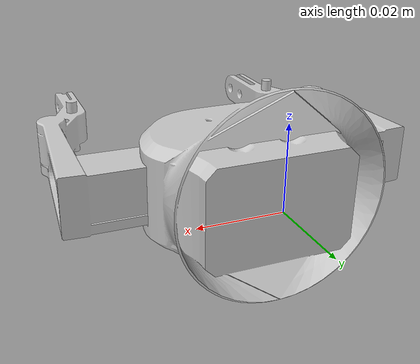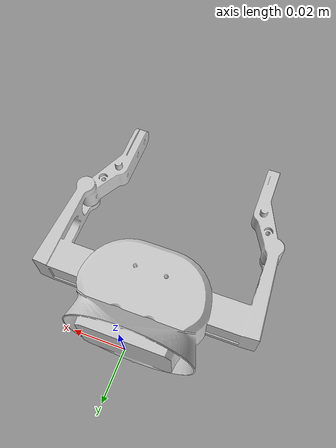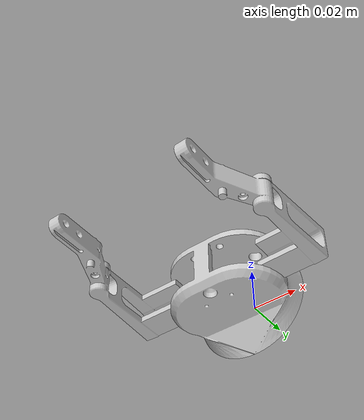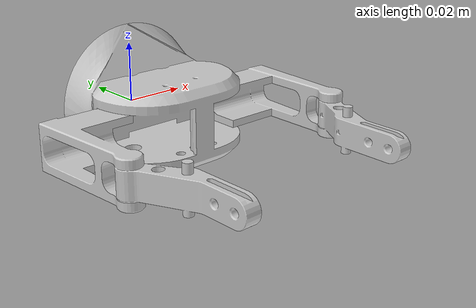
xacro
<?xml version="1.0"?>
<robot xmlns:xacro="http://ros.org/wiki/xacro" name="anya_gripper">
    <link name="gripper_link">
        <visual>
            <geometry>
                <mesh filename="package://anya_final/meshes/gripper_3.dae" scale="0.001 0.001 0.001"/>
            </geometry>
            <origin xyz="0.0 0.0 0.0" rpy="0 0 0"/>
        </visual>
        <collision>
         <geometry>
            <mesh filename="package://anya_final/meshes/gripper_3.dae" scale="0.001 0.001 0.001"/>
         </geometry>
         <origin xyz="0.0 0.0 -0.0" rpy="0 0 0"/>
       </collision>
       <inertial>
         <mass value="0.131"/>
         <inertia ixx="100.0" ixy="0.0" ixz="0.0" iyy="100.0" iyz="0.0" izz="100.0"/>
       </inertial>
    </link>

    <link name="finger_1">
        <visual>
            <geometry>
                <mesh filename="package://anya_final/meshes/finger_1.dae" scale="0.001 0.001 0.001"/>
            </geometry>
            <origin xyz="-0.02 -0.017214 0.007" rpy="0 0 0"/>
        </visual>
        <collision>
         <geometry>
            <mesh filename="package://anya_final/meshes/finger_1.dae" scale="0.001 0.001 0.001"/>
         </geometry>
         <origin xyz="0.0 0.0 0.0" rpy="0 0 0"/>
       </collision>
       <inertial>
         <mass value="0.131"/>
         <inertia ixx="100.0" ixy="0.0" ixz="0.0" iyy="100.0" iyz="0.0" izz="100.0"/>
       </inertial>
    </link>

    <joint name="finger_joint_1" type="prismatic">
        <parent link="gripper_link"/>
        <child link="finger_1"/>
        <axis xyz="1 0 0"/>
        <limit lower="-0.0" upper="0.02" velocity="0.5" effort="1000.0"/>
        <origin xyz="0 -0.0 0.0" rpy="0 0 0"/>
    </joint>

    <link name="finger_2">
        <visual>
            <geometry>
                <mesh filename="package://anya_final/meshes/finger_1.dae" scale="0.001 0.001 0.001"/>
            </geometry>
            <origin xyz="-0.02 -0.017214 0.007" rpy="0 0 0"/>
        </visual>
        <collision>
         <geometry>
            <mesh filename="package://anya_final/meshes/finger_1.dae" scale="0.001 0.001 0.001"/>
         </geometry>
         <origin xyz="-0.02 -0.017214 0.007" rpy="0 0 0"/>
       </collision>
       <inertial>
         <mass value="0.131"/>
         <inertia ixx="100.0" ixy="0.0" ixz="0.0" iyy="100.0" iyz="0.0" izz="100.0"/>
       </inertial>
    </link>

    <joint name="finger_joint_2" type="prismatic">
        <parent link="gripper_link"/>
        <child link="finger_2"/>
        <axis xyz="1 0 0"/>
        <limit lower="-0.0" upper="0.02" velocity="0.5" effort="1000.0"/>
        <origin xyz="0 0.0 0.0" rpy="0 3.14 0"/>
    </joint>

</robot>
